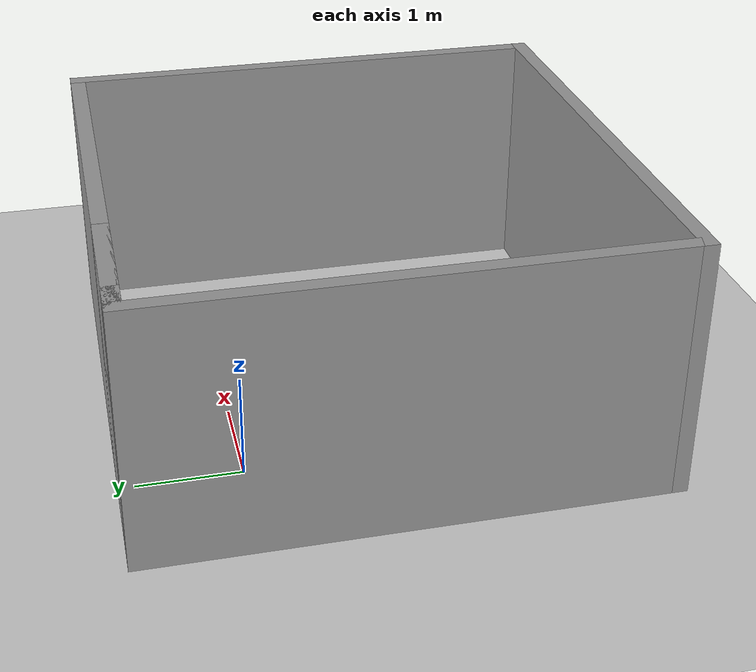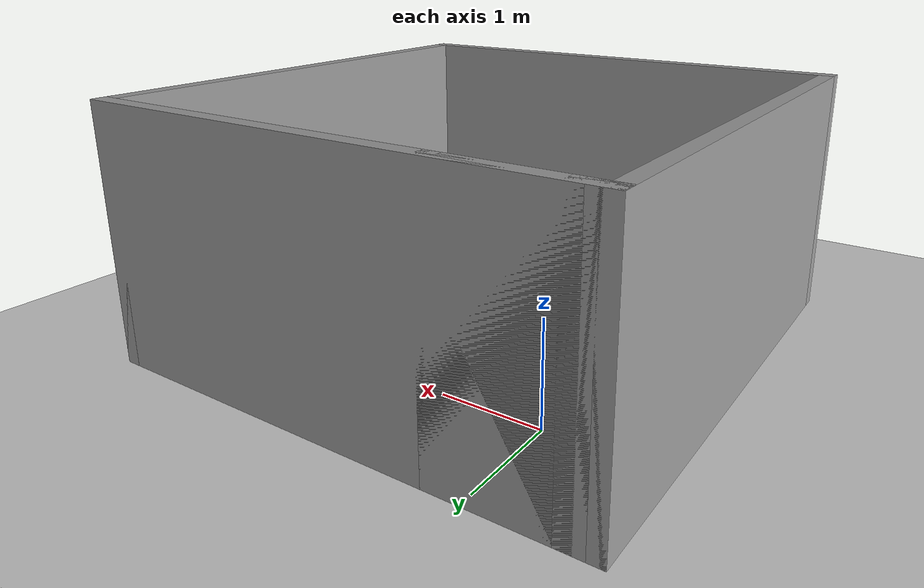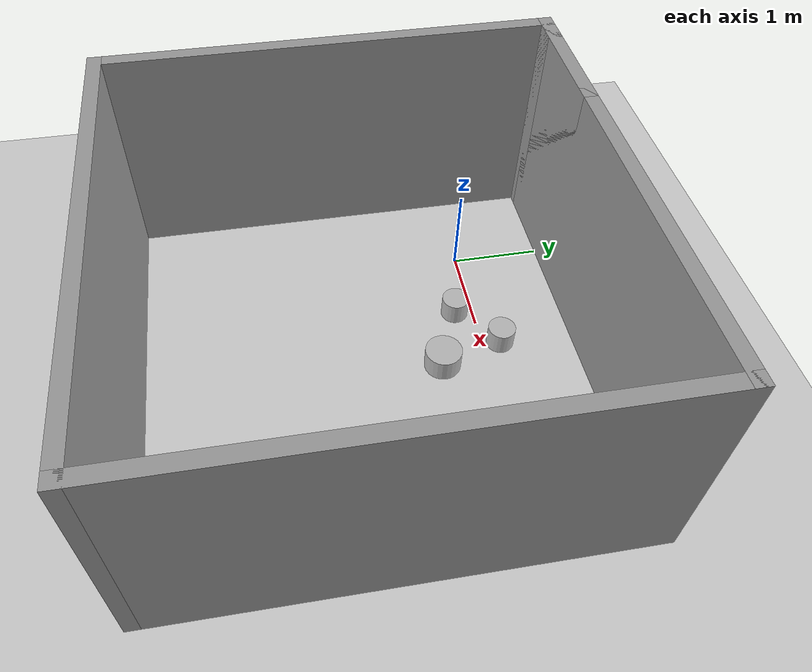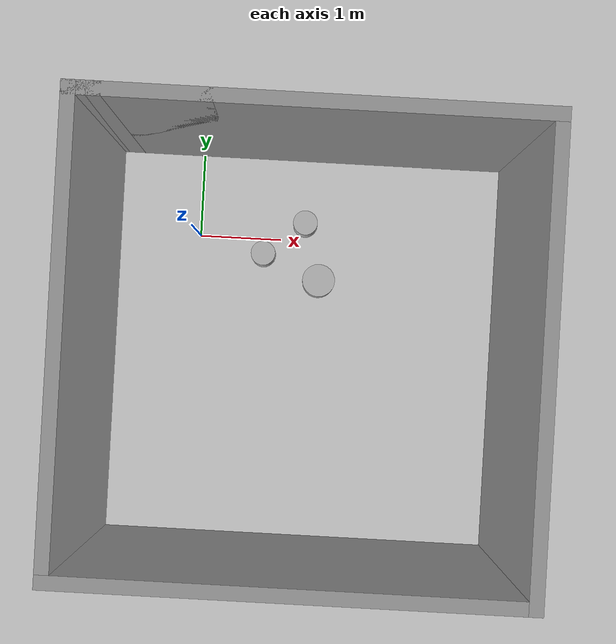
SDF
<sdf version="1.6">
 <world name="default">
  <scene><ambient>0.4 0.4 0.4 1</ambient><background>0.7 0.7 0.7 1</background><shadows>1</shadows></scene>
  <light name="sun" type="directional">
   <pose>0 0 10 0 -0 0</pose>
   <diffuse>0.8 0.8 0.8 1</diffuse>
   <specular>0.1 0.1 0.1 1</specular>
   <attenuation>
    <range>1000</range>
    <constant>0.9</constant>
    <linear>0.01</linear>
    <quadratic>0.001</quadratic>
   </attenuation>
   <direction>-0.5 0.5 -1</direction>
  </light>
  <model name="ground_plane">
   <static>1</static>
   <link name="link">
    <collision name="collision">
     <geometry><plane><normal>0 0 1</normal><size>100 100</size></plane></geometry>
     <surface><friction><ode><mu>100</mu><mu2>50</mu2></ode></friction></surface>
    </collision>
    <visual name="visual">
     <cast_shadows>0</cast_shadows>
     <geometry><plane><normal>0 0 1</normal><size>100 100</size></plane></geometry>
     <material>
      <script><uri>file://media/materials/scripts/gazebo.material</uri><name>Gazebo/Grey</name></script>
     </material>
    </visual>
   </link>
  </model>
  <physics name="default_physics" default="0" type="ode">
   <real_time_update_rate>1000</real_time_update_rate>
   <max_step_size>0.001</max_step_size>
   <real_time_factor>1</real_time_factor>
   <ode>
    <solver>
     <type>quick</type>
     <iters>150</iters>
     <precon_iters>0</precon_iters>
     <sor>1.4</sor>
     <use_dynamic_moi_rescaling>1</use_dynamic_moi_rescaling>
    </solver>
    <constraints>
     <cfm>1e-05</cfm>
     <erp>0.2</erp>
     <contact_max_correcting_vel>2000</contact_max_correcting_vel>
     <contact_surface_layer>0.01</contact_surface_layer>
    </constraints>
   </ode>
  </physics>
  <gravity>0 0 -9.8</gravity>
  <magnetic_field>6e-06 2.3e-05 -4.2e-05</magnetic_field>
  <atmosphere type="adiabatic"/>
  <spherical_coordinates>
   <surface_model>EARTH_WGS84</surface_model>
   <latitude_deg>0</latitude_deg>
   <longitude_deg>0</longitude_deg>
   <elevation>0</elevation>
   <heading_deg>0</heading_deg>
  </spherical_coordinates>
  <model name="Untitled23">
   <pose>1.34499 -1.34503 0 0 -0 0</pose>
   <link name="Wall_18">
    <collision name="Wall_18_Collision">
     <geometry><box><size>4.75 0.15 2.5</size></box></geometry>
     <pose>0 0 1.25 0 -0 0</pose>
    </collision>
    <visual name="Wall_18_Visual">
     <pose>0 0 1.25 0 -0 0</pose>
     <geometry><box><size>4.75 0.15 2.5</size></box></geometry>
     <material>
      <script><uri>file://media/materials/scripts/gazebo.material</uri><name>Gazebo/Grey</name></script>
      <ambient>1 1 1 1</ambient>
     </material>
    </visual>
    <pose>0.125 2.425 0 0 -0 0</pose>
   </link>
   <link name="Wall_19">
    <collision name="Wall_19_Collision">
     <geometry><box><size>5 0.15 2.5</size></box></geometry>
     <pose>0 0 1.25 0 -0 0</pose>
    </collision>
    <visual name="Wall_19_Visual">
     <pose>0 0 1.25 0 -0 0</pose>
     <geometry><box><size>5 0.15 2.5</size></box></geometry>
     <material>
      <script><uri>file://media/materials/scripts/gazebo.material</uri><name>Gazebo/Grey</name></script>
      <ambient>1 1 1 1</ambient>
     </material>
    </visual>
    <pose>2.425 0 0 0 0 -1.5708</pose>
   </link>
   <link name="Wall_20">
    <collision name="Wall_20_Collision">
     <geometry><box><size>5 0.15 2.5</size></box></geometry>
     <pose>0 0 1.25 0 -0 0</pose>
    </collision>
    <visual name="Wall_20_Visual">
     <pose>0 0 1.25 0 -0 0</pose>
     <geometry><box><size>5 0.15 2.5</size></box></geometry>
     <material>
      <script><uri>file://media/materials/scripts/gazebo.material</uri><name>Gazebo/Grey</name></script>
      <ambient>1 1 1 1</ambient>
     </material>
    </visual>
    <pose>0 -2.425 0 0 -0 3.14159</pose>
   </link>
   <link name="Wall_21">
    <collision name="Wall_21_Collision">
     <geometry><box><size>5 0.15 2.5</size></box></geometry>
     <pose>0 0 1.25 0 -0 0</pose>
    </collision>
    <visual name="Wall_21_Visual">
     <pose>0 0 1.25 0 -0 0</pose>
     <geometry><box><size>5 0.15 2.5</size></box></geometry>
     <material>
      <script><uri>file://media/materials/scripts/gazebo.material</uri><name>Gazebo/Grey</name></script>
      <ambient>1 1 1 1</ambient>
     </material>
    </visual>
    <pose>-2.425 0 0 0 -0 1.5708</pose>
   </link>
   <link name="Wall_22">
    <collision name="Wall_22_Collision">
     <geometry><box><size>0.4 0.15 2.5</size></box></geometry>
     <pose>0 0 1.25 0 -0 0</pose>
    </collision>
    <visual name="Wall_22_Visual">
     <pose>0 0 1.25 0 -0 0</pose>
     <geometry><box><size>0.4 0.15 2.5</size></box></geometry>
     <material>
      <script><uri>file://media/materials/scripts/gazebo.material</uri><name>Gazebo/Grey</name></script>
      <ambient>1 1 1 1</ambient>
     </material>
    </visual>
    <pose>-2.3 2.425 0 0 -0 0</pose>
   </link>
   <link name="Wall_23">
    <collision name="Wall_23_Collision">
     <geometry><box><size>0.4 0.15 2.5</size></box></geometry>
     <pose>0 0 1.25 0 -0 0</pose>
    </collision>
    <visual name="Wall_23_Visual">
     <pose>0 0 1.25 0 -0 0</pose>
     <geometry><box><size>0.4 0.15 2.5</size></box></geometry>
     <material>
      <script><uri>file://media/materials/scripts/gazebo.material</uri><name>Gazebo/Grey</name></script>
      <ambient>1 1 1 1</ambient>
     </material>
    </visual>
    <pose>-2.3 2.425 0 0 -0 3.14159</pose>
   </link>
   <link name="Wall_24">
    <collision name="Wall_24_Collision">
     <geometry><box><size>1.5 0.15 2.5</size></box></geometry>
     <pose>0 0 1.25 0 -0 0</pose>
    </collision>
    <visual name="Wall_24_Visual">
     <pose>0 0 1.25 0 -0 0</pose>
     <geometry><box><size>1.5 0.15 2.5</size></box></geometry>
     <material>
      <script><uri>file://media/materials/scripts/gazebo.material</uri><name>Gazebo/Grey</name></script>
      <ambient>1 1 1 1</ambient>
     </material>
    </visual>
    <pose>-1.75 2.425 0 0 -0 0</pose>
   </link>
   <link name="Wall_25">
    <collision name="Wall_25_Collision">
     <geometry><box><size>0.15 0.15 2.5</size></box></geometry>
     <pose>0 0 1.25 0 -0 0</pose>
    </collision>
    <visual name="Wall_25_Visual">
     <pose>0 0 1.25 0 -0 0</pose>
     <geometry><box><size>0.15 0.15 2.5</size></box></geometry>
     <material>
      <script><uri>file://media/materials/scripts/gazebo.material</uri><name>Gazebo/Grey</name></script>
      <ambient>1 1 1 1</ambient>
     </material>
    </visual>
    <pose>-1.075 2.425 0 0 -0 0</pose>
   </link>
   <link name="Wall_26">
    <collision name="Wall_26_Collision">
     <geometry><box><size>0.15 0.15 2.5</size></box></geometry>
     <pose>0 0 1.25 0 -0 0</pose>
    </collision>
    <visual name="Wall_26_Visual">
     <pose>0 0 1.25 0 -0 0</pose>
     <geometry><box><size>0.15 0.15 2.5</size></box></geometry>
     <material>
      <script><uri>file://media/materials/scripts/gazebo.material</uri><name>Gazebo/Grey</name></script>
      <ambient>1 1 1 1</ambient>
     </material>
    </visual>
    <pose>-1.075 2.425 0 0 -0 0</pose>
   </link>
   <static>1</static>
  </model>
  <model name="box1">
   <pose>1.5 -0.5 0 0 0 0</pose>
   <link name="link5">
    <kinematic>true</kinematic>
    <collision name="collision">
     <geometry><cylinder><radius>0.2</radius><length>0.5</length></cylinder></geometry>
     <surface><friction><ode><mu>0.0</mu><mu2>0.0</mu2></ode></friction></surface>
    </collision>
    <visual name="visual">
     <geometry><cylinder><radius>0.2</radius><length>0.5</length></cylinder></geometry>
    </visual>
   </link>
   <plugin name="model_move" filename="libmodel_move.so">
    <link>link5</link>
    <update_period>2</update_period>
   </plugin>
  </model>
  <model name="box2">
   <pose>1.3 0.2 0 0 0 0</pose>
   <link name="link5">
    <kinematic>true</kinematic>
    <collision name="collision">
     <geometry><cylinder><radius>0.15</radius><length>0.5</length></cylinder></geometry>
     <surface><friction><ode><mu>0.0</mu><mu2>0.0</mu2></ode></friction></surface>
    </collision>
    <visual name="visual">
     <geometry><cylinder><radius>0.15</radius><length>0.5</length></cylinder></geometry>
    </visual>
   </link>
   <plugin name="model_move" filename="libmodel_move.so">
    <link>link5</link>
    <update_period>3</update_period>
   </plugin>
  </model>
  <model name="box3">
   <pose>0.8 -0.2 0 0 0 0</pose>
   <link name="link6">
    <kinematic>true</kinematic>
    <collision name="collision">
     <geometry><cylinder><radius>0.15</radius><length>0.5</length></cylinder></geometry>
     <surface><friction><ode><mu>0.0</mu><mu2>0.0</mu2></ode></friction></surface>
    </collision>
    <visual name="visual">
     <geometry><cylinder><radius>0.15</radius><length>0.5</length></cylinder></geometry>
    </visual>
   </link>
   <plugin name="model_move" filename="libmodel_move.so">
    <link>link6</link>
    <update_period>3</update_period>
   </plugin>
  </model>
 </world>
</sdf>
